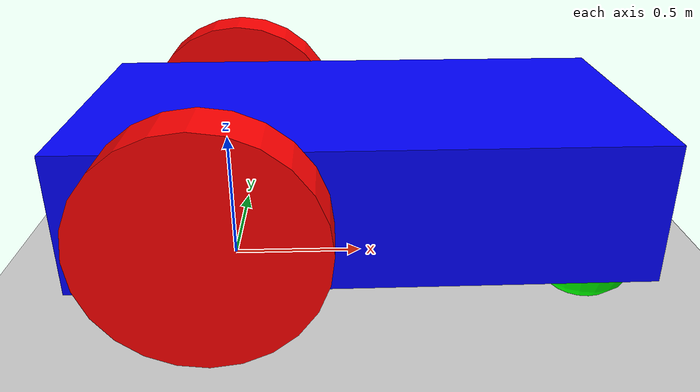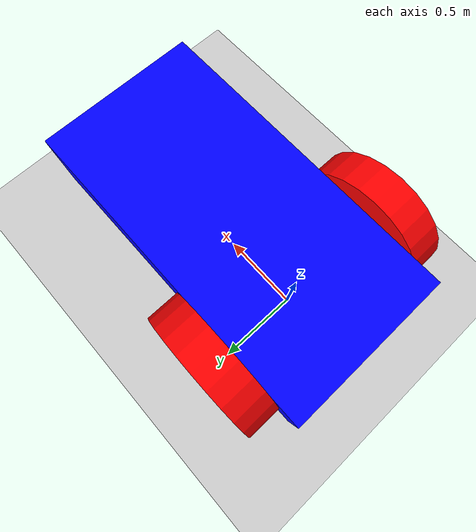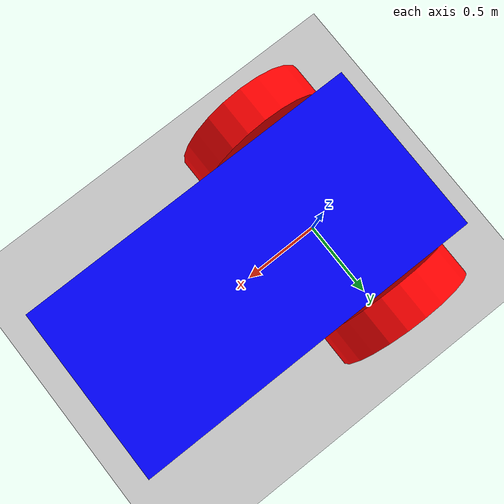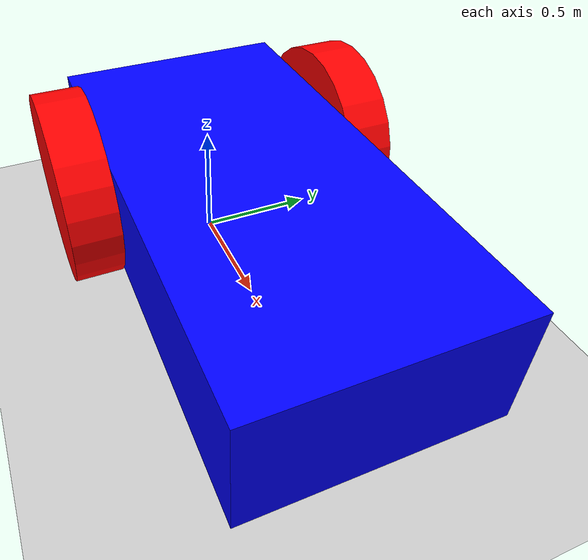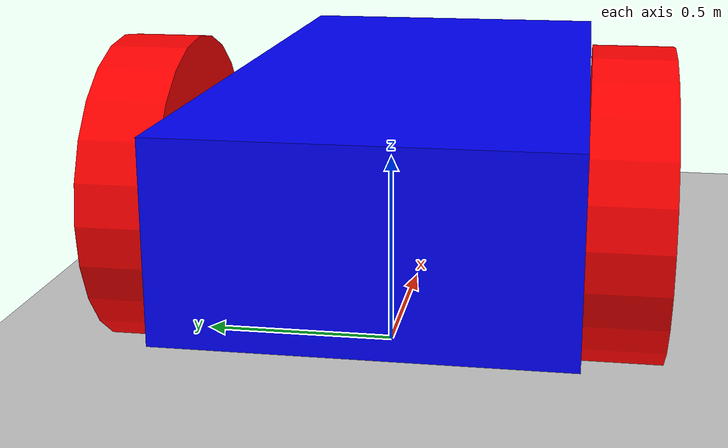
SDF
<?xml version="1.0" ?>
<sdf version="1.8">
    <world name="car_world">
        <physics name="1ms" type="ignored">
            <max_step_size>0.001</max_step_size>
            <real_time_factor>1.0</real_time_factor>
        </physics>
        <plugin
            filename="ignition-gazebo-physics-system"
            name="ignition::gazebo::systems::Physics">
        </plugin>
        <plugin
            filename="ignition-gazebo-user-commands-system"
            name="ignition::gazebo::systems::UserCommands">
        </plugin>
        <plugin
            filename="ignition-gazebo-scene-broadcaster-system"
            name="ignition::gazebo::systems::SceneBroadcaster">
        </plugin>

        <light type="directional" name="sun">
            <cast_shadows>true</cast_shadows>
            <pose>0 0 10 0 0 0</pose>
            <diffuse>0.8 0.8 0.8 1</diffuse>
            <specular>0.2 0.2 0.2 1</specular>
            <attenuation>
                <range>1000</range>
                <constant>0.9</constant>
                <linear>0.01</linear>
                <quadratic>0.001</quadratic>
            </attenuation>
            <direction>-0.5 0.1 -0.9</direction>
        </light>

        <model name="ground_plane">
            <static>true</static>
            <link name="link">
                <collision name="collision">
                <geometry>
                    <plane>
                    <normal>0 0 1</normal>
                    </plane>
                </geometry>
                </collision>
                <visual name="visual">
                <geometry>
                    <plane>
                    <normal>0 0 1</normal>
                    <size>100 100</size>
                    </plane>
                </geometry>
                <material>
                    <ambient>0.8 0.8 0.8 1</ambient>
                    <diffuse>0.8 0.8 0.8 1</diffuse>
                    <specular>0.8 0.8 0.8 1</specular>
                </material>
                </visual>
            </link>
        </model>

        <model name='vehicle_blue' canonical_link='chassis'>
            <pose relative_to='world'>0 0 0 0 0 0</pose>   <!--the pose is relative to the world by default-->

            <!--chassis-->
            <link name='chassis'>
                <pose relative_to='__model__'>0.5 0 0.4 0 0 0</pose>
                <inertial> <!--inertial properties of the link mass, inertia matix-->
                    <mass>1.14395</mass>
                    <inertia>
                        <ixx>0.095329</ixx>
                        <ixy>0</ixy>
                        <ixz>0</ixz>
                        <iyy>0.381317</iyy>
                        <iyz>0</iyz>
                        <izz>0.476646</izz>
                    </inertia>
                </inertial>
                <visual name='visual'>
                    <geometry>
                        <box>
                            <size>2.0 1.0 0.5</size>
                        </box>
                    </geometry>
                    <!--Color of the link-->
                    <material>
                        <ambient>0.0 0.0 1.0 1</ambient>
                        <diffuse>0.0 0.0 1.0 1</diffuse>
                        <specular>0.0 0.0 1.0 1</specular>
                    </material>
                </visual>
                <collision name='collision'>
                    <geometry>
                        <box>
                            <size>2.0 1.0 0.5</size>
                        </box>
                    </geometry>
                </collision>
            </link>

            <!--Left wheel-->
            <link name='left_wheel'>
                <pose relative_to="chassis">-0.5 0.6 0 -1.5707 0 0</pose> <!--angles are in radian-->
                <inertial>
                    <mass>1</mass>
                    <inertia>
                        <ixx>0.043333</ixx>
                        <ixy>0</ixy>
                        <ixz>0</ixz>
                        <iyy>0.043333</iyy>
                        <iyz>0</iyz>
                        <izz>0.08</izz>
                    </inertia>
                </inertial>
                <visual name='visual'>
                    <geometry>
                        <cylinder>
                            <radius>0.4</radius>
                            <length>0.2</length>
                        </cylinder>
                    </geometry>
                    <material>
                        <ambient>1.0 0.0 0.0 1</ambient>
                        <diffuse>1.0 0.0 0.0 1</diffuse>
                        <specular>1.0 0.0 0.0 1</specular>
                    </material>
                </visual>
                <collision name='collision'>
                    <geometry>
                        <cylinder>
                            <radius>0.4</radius>
                            <length>0.2</length>
                        </cylinder>
                    </geometry>
                </collision>
            </link>

            <!--The same as left wheel but with different position-->
            <link name='right_wheel'>
                <pose relative_to="chassis">-0.5 -0.6 0 -1.5707 0 0</pose> <!--angles are in radian-->
                <inertial>
                    <mass>1</mass>
                    <inertia>
                        <ixx>0.043333</ixx>
                        <ixy>0</ixy>
                        <ixz>0</ixz>
                        <iyy>0.043333</iyy>
                        <iyz>0</iyz>
                        <izz>0.08</izz>
                    </inertia>
                </inertial>
                <visual name='visual'>
                    <geometry>
                        <cylinder>
                            <radius>0.4</radius>
                            <length>0.2</length>
                        </cylinder>
                    </geometry>
                    <material>
                        <ambient>1.0 0.0 0.0 1</ambient>
                        <diffuse>1.0 0.0 0.0 1</diffuse>
                        <specular>1.0 0.0 0.0 1</specular>
                    </material>
                </visual>
                <collision name='collision'>
                    <geometry>
                        <cylinder>
                            <radius>0.4</radius>
                            <length>0.2</length>
                        </cylinder>
                    </geometry>
                </collision>
            </link>

            <!--arbitrary frame-->
            <frame name="caster_frame_left" attached_to='chassis'>
                <pose>0.8 -0.3 -0.2 0 0 0</pose>
            </frame>

            <frame name="caster_frame_right" attached_to='chassis'>
                <pose>0.8 0.3 -0.2 0 0 0</pose>
            </frame>

            <!--caster wheel-->
            <link name='caster_left'>
                <pose relative_to='caster_frame_left'/>
                <inertial>
                    <mass>1</mass>
                    <inertia>
                        <ixx>0.016</ixx>
                        <ixy>0</ixy>
                        <ixz>0</ixz>
                        <iyy>0.016</iyy>
                        <iyz>0</iyz>
                        <izz>0.016</izz>
                    </inertia>
                </inertial>
                <visual name='visual'>
                    <geometry>
                        <sphere>
                            <radius>0.2</radius>
                        </sphere>
                    </geometry>
                    <material>
                        <ambient>0.0 1 0.0 1</ambient>
                        <diffuse>0.0 1 0.0 1</diffuse>
                        <specular>0.0 1 0.0 1</specular>
                    </material>
                </visual>
                <collision name='collision'>
                    <geometry>
                        <sphere>
                            <radius>0.2</radius>
                        </sphere>
                    </geometry>
                </collision>
            </link>

            <link name='caster_right'>
                <pose relative_to='caster_frame_right'/>
                <inertial>
                    <mass>1</mass>
                    <inertia>
                        <ixx>0.016</ixx>
                        <ixy>0</ixy>
                        <ixz>0</ixz>
                        <iyy>0.016</iyy>
                        <iyz>0</iyz>
                        <izz>0.016</izz>
                    </inertia>
                </inertial>
                <visual name='visual'>
                    <geometry>
                        <sphere>
                            <radius>0.2</radius>
                        </sphere>
                    </geometry>
                    <material>
                        <ambient>0.0 1 0.0 1</ambient>
                        <diffuse>0.0 1 0.0 1</diffuse>
                        <specular>0.0 1 0.0 1</specular>
                    </material>
                </visual>
                <collision name='collision'>
                    <geometry>
                        <sphere>
                            <radius>0.2</radius>
                        </sphere>
                    </geometry>
                </collision>
            </link>

            <!--left wheel joint-->
            <joint name='left_wheel_joint' type='revolute'>
                <pose relative_to='left_wheel'/>
                <parent>chassis</parent>
                <child>left_wheel</child>
                <axis>
                    <xyz expressed_in='__model__'>0 1 0</xyz> <!--can be descired to any frame or even arbitrary frames-->
                    <limit>
                        <lower>-1.79769e+308</lower>    <!--negative infinity-->
                        <upper>1.79769e+308</upper>     <!--positive infinity-->
                    </limit>
                </axis>
            </joint>

            <!--right wheel joint-->
            <joint name='right_wheel_joint' type='revolute'>
                <pose relative_to='right_wheel'/>
                <parent>chassis</parent>
                <child>right_wheel</child>
                <axis>
                    <xyz expressed_in='__model__'>0 1 0</xyz>
                    <limit>
                        <lower>-1.79769e+308</lower>    <!--negative infinity-->
                        <upper>1.79769e+308</upper>     <!--positive infinity-->
                    </limit>
                </axis>
            </joint>

            <!--caster wheel joint--> <!--pose defult value is the child-->
            <joint name='caster_wheel_right' type='ball'>
                <parent>chassis</parent>
                <child>caster_right</child>
            </joint>
            <joint name='caster_wheel_left' type='ball'>
                <parent>chassis</parent>
                <child>caster_left</child>
            </joint>
        </model>
    </world>
</sdf>
